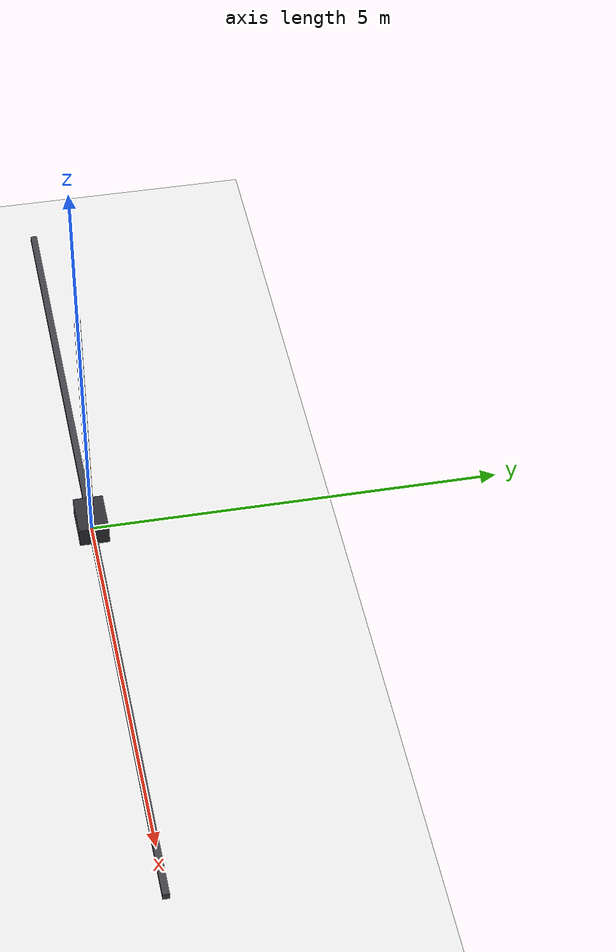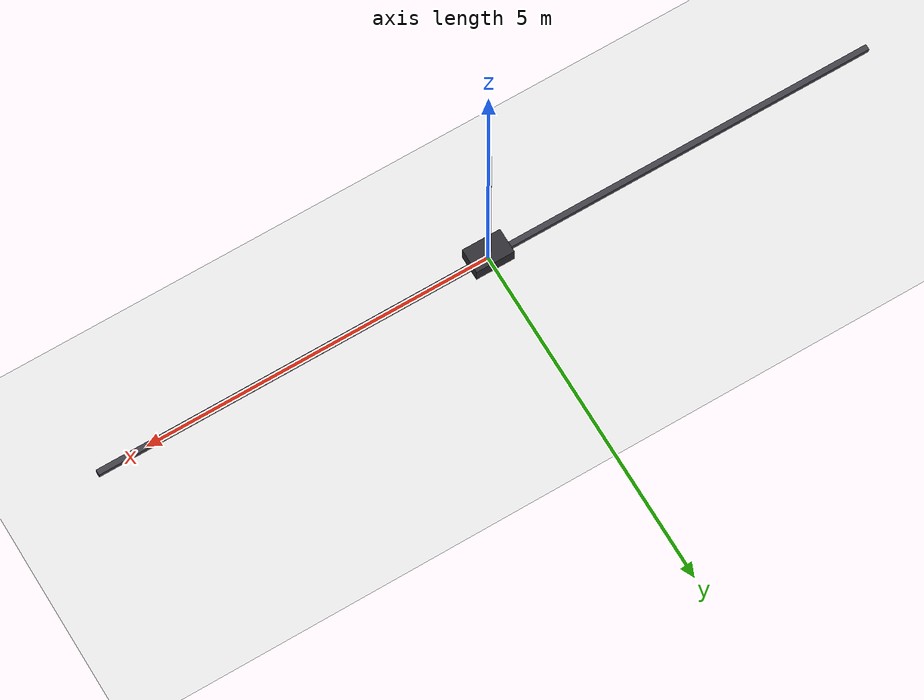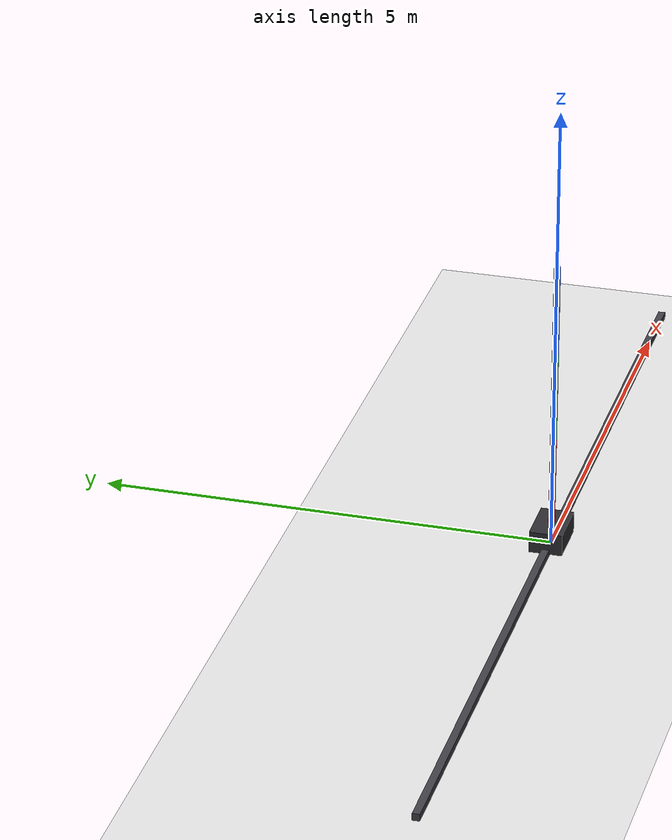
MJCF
<mujoco model="paper triple pendulum balance">
    <compiler angle="radian" autolimits="true"/>

    <!-- The paper uses a 20 ms simulation and control interval. -->
    <option timestep="0.02" gravity="0 0 -9.81" integrator="implicitfast"/>

    <visual>
        <headlight ambient="0.35 0.35 0.35" diffuse="0.7 0.7 0.7"/>
    </visual>

    <default>
        <geom contype="0" conaffinity="0"/>
        <site type="sphere" size="0.025"/>
    </default>

    <worldbody>
        <light pos="0 -4 6"/>
        <camera name="side" pos="0 -12 2" xyaxes="1 0 0 0 0 1"/>

        <geom name="floor" type="plane" pos="0 0 -0.35" size="7 3 0.1"
              mass="0" rgba="0.9 0.9 0.9 1"/>
        <geom name="rail" type="box" pos="0 0 0.02" size="5.7 0.04 0.04"
              mass="0" rgba="0.25 0.25 0.28 1"/>

        <body name="cart" pos="0 0 0.25">
            <joint name="cart_slide" type="slide" axis="1 0 0" limited="false"/>
            <inertial pos="0 0 -0.12" mass="1.0" diaginertia="0.1 0.1 0.1"/>
            <geom name="cart_body" type="box" pos="0 0 -0.12"
                  size="0.28 0.18 0.12" mass="0" rgba="0.18 0.18 0.2 1"/>
            <site name="cart_pivot" pos="0 0 0" rgba="1 0.8 0.1 1"/>

            <!-- qpos = [cart_x, 0, 0, 0] is the upright equilibrium. -->
            <body name="link1" pos="0 0 0">
                <joint name="joint1" type="hinge" axis="0 1 0"/>
                <inertial pos="0 0 0.5" mass="0.1"
                          diaginertia="0.0083333333 0.0083333333 0.0001"/>
                <geom name="rod1" type="capsule" fromto="0 0 0 0 0 1"
                      size="0.035" mass="0" rgba="0.9 0.2 0.2 1"/>
                <site name="link1_endpoint" pos="0 0 1" rgba="1 0.8 0.1 1"/>

                <body name="link2" pos="0 0 1">
                    <joint name="joint2" type="hinge" axis="0 1 0"/>
                    <inertial pos="0 0 0.5" mass="0.1"
                              diaginertia="0.0083333333 0.0083333333 0.0001"/>
                    <geom name="rod2" type="capsule" fromto="0 0 0 0 0 1"
                          size="0.035" mass="0" rgba="0.2 0.7 0.3 1"/>
                    <site name="link2_endpoint" pos="0 0 1" rgba="1 0.8 0.1 1"/>

                    <body name="link3" pos="0 0 1">
                        <joint name="joint3" type="hinge" axis="0 1 0"/>
                        <inertial pos="0 0 0.5" mass="0.1"
                                  diaginertia="0.0083333333 0.0083333333 0.0001"/>
                        <geom name="rod3" type="capsule" fromto="0 0 0 0 0 1"
                              size="0.035" mass="0" rgba="0.2 0.4 0.9 1"/>
                        <site name="link3_endpoint" pos="0 0 1"
                              rgba="1 0.8 0.1 1"/>
                    </body>
                </body>
            </body>
        </body>
    </worldbody>

    <actuator>
        <!-- Actions select exactly -60 N or +60 N on the cart. -->
        <motor name="cart_motor" joint="cart_slide" gear="1"
               ctrllimited="true" ctrlrange="-60 60"
               forcelimited="true" forcerange="-60 60"/>
    </actuator>
</mujoco>
